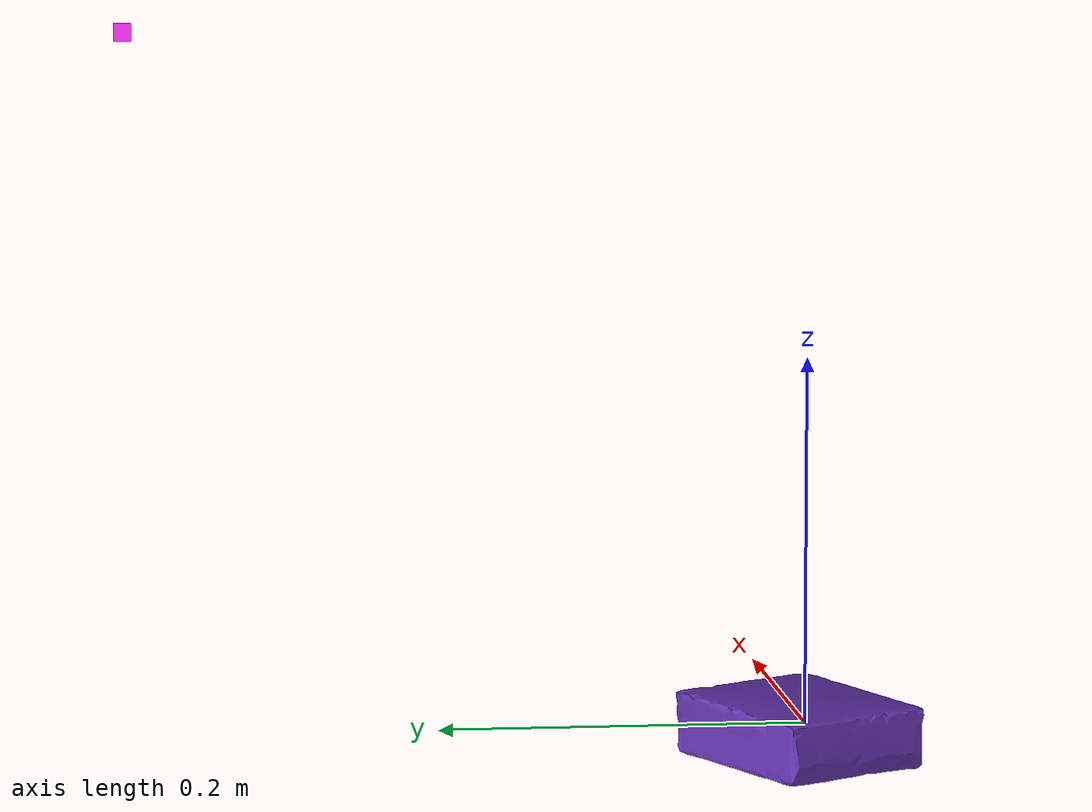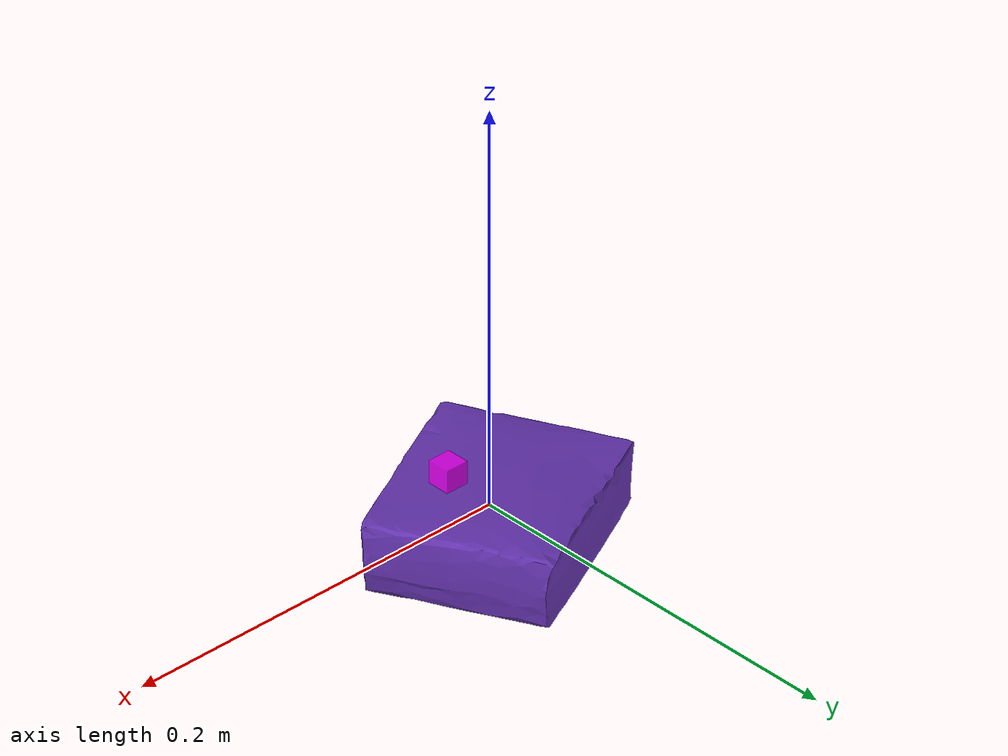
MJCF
<?xml version="1.0" encoding="utf-8"?>
<mujoco model="top_watertight_tiny">

  <asset>

    <mesh file="top_watertight_tiny.obj"/>

    <mesh file="top_watertight_tiny_collision_0.obj"/>

    <mesh file="top_watertight_tiny_collision_1.obj"/>

    <mesh file="bottom_watertight_tiny.obj"/>

    <mesh file="bottom_watertight_tiny_collision_0.obj"/>

  </asset>

  <worldbody>

    <body name="top_watertight_tiny">

      <freejoint/>

      <geom solimp="0.90 0.95 0.001" solref="0.02 1.0" density="100" friction="0.95 0.4 0.3" rgba="0.4 0.2 0.7 1" mesh="top_watertight_tiny" group="2" type="mesh" contype="0" conaffinity="0"/>

      <geom solimp="0.90 0.95 0.001" solref="0.02 1.0" density="100" friction="0.95 0.4 0.3" mesh="top_watertight_tiny_collision_0" rgba="0.37133925164826154 0.9712906390079413 0.9833357902918002 1" group="3" type="mesh"/>

      <geom solimp="0.90 0.95 0.001" solref="0.02 1.0" density="100" friction="0.95 0.4 0.3" mesh="top_watertight_tiny_collision_1" rgba="0.6144586688967717 0.8751714555364056 0.8538109153053017 1" group="3" type="mesh"/>

      <body name="bottom_watertight_tiny">

        <geom solimp="0.90 0.95 0.001" solref="0.02 1.0" density="100" friction="0.95 0.4 0.3" rgba="1 0 1 0.8" mesh="bottom_watertight_tiny" group="2" type="mesh" contype="0" conaffinity="0"/>

        <geom solimp="0.90 0.95 0.001" solref="0.02 1.0" density="100" friction="0.95 0.4 0.3" mesh="bottom_watertight_tiny_collision_0" rgba="0.7680701970220749 0.8993220047655524 0.5394664547245673 1" group="3" type="mesh"/>

        <site name="bottom_watertight_tiny_touch_site" pos="0 0 0" size="0.2" rgba="1 0 0 0." type="sphere"/>
      </body>

      <site name="top_watertight_tiny_touch_site" pos="0 0 0" size="0.2" rgba="1 0 0 0." type="sphere"/>
    </body>

  </worldbody>

  <sensor>
    <touch name="top_watertight_tiny_touch" site="top_watertight_tiny_touch_site"/>
    <touch name="bottom_watertight_tiny_touch" site="bottom_watertight_tiny_touch_site"/>
  </sensor>
</mujoco>
